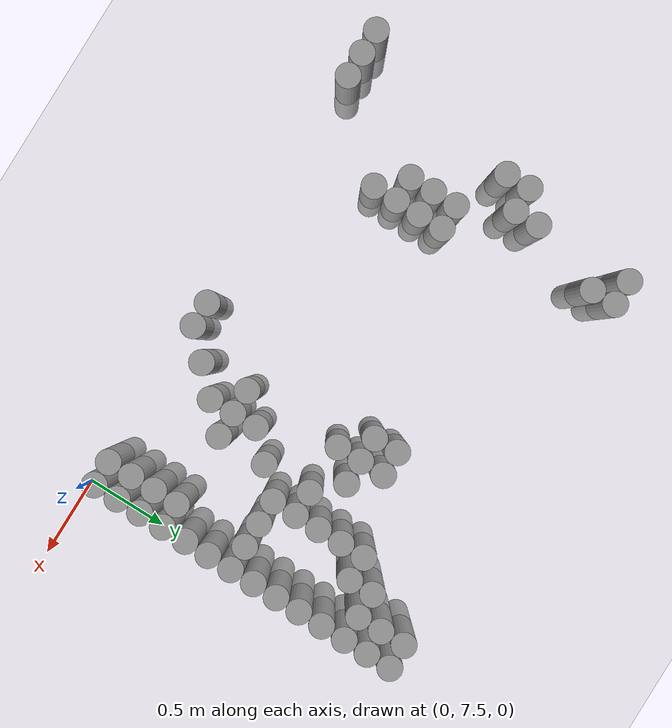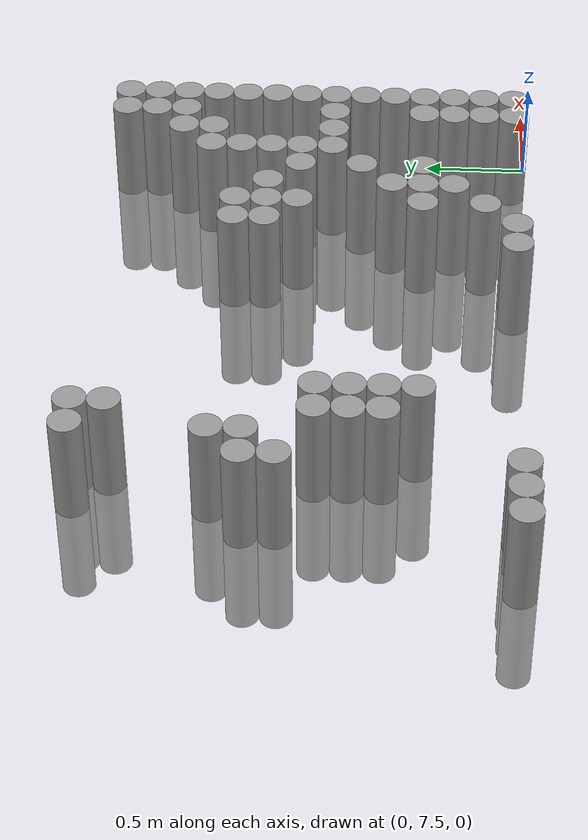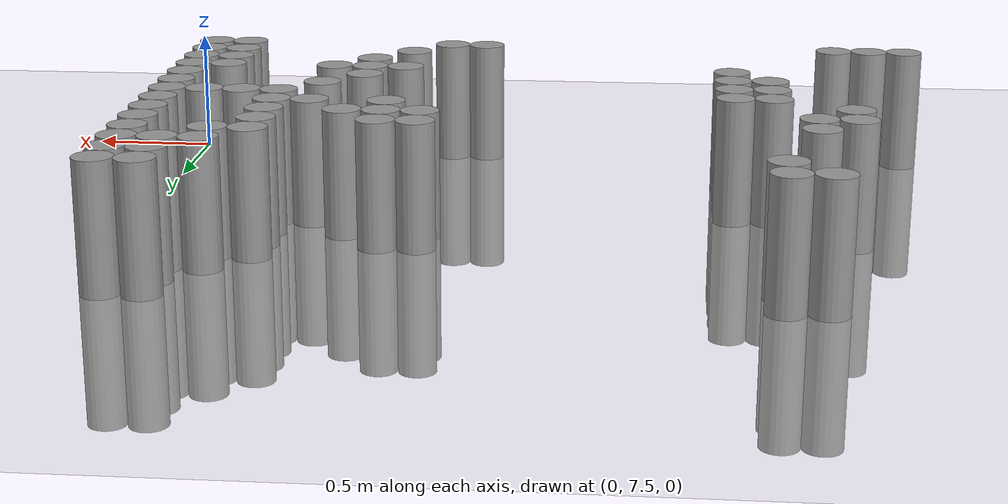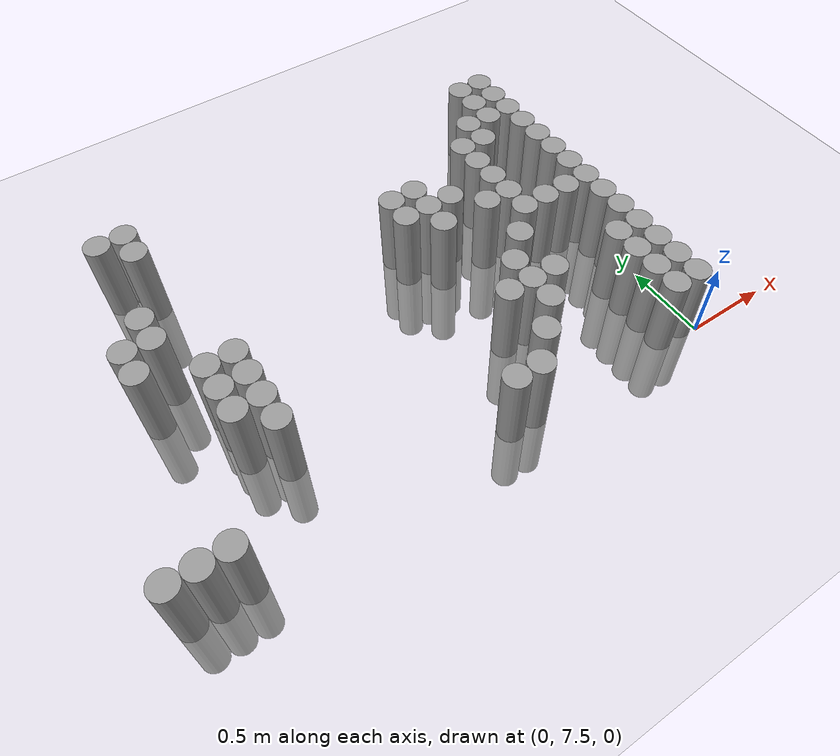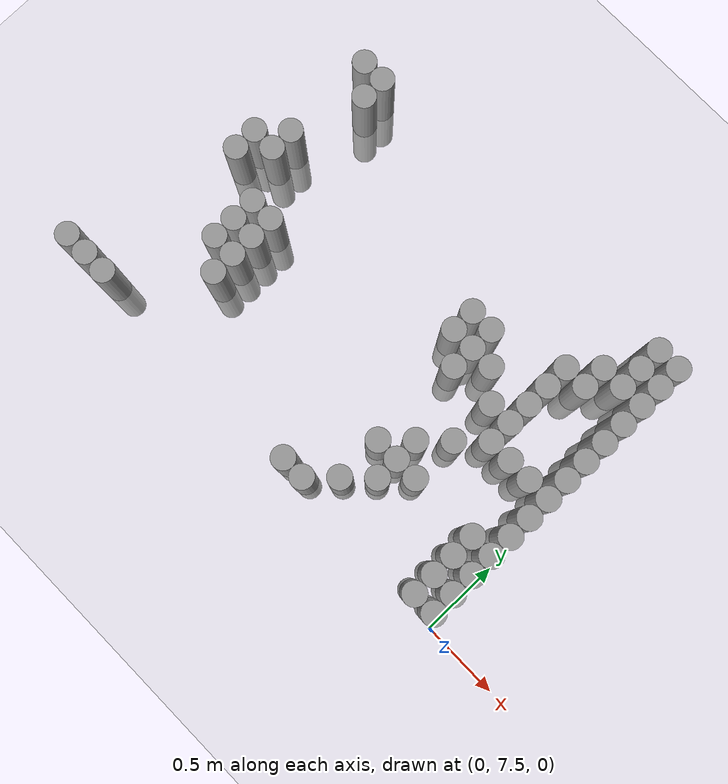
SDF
<sdf version="1.6">
 <world name="default">
  <model name="ground_plane">
   <static>1</static>
   <static>1</static>
   <link name="link">
    <collision name="collision">
     <geometry><plane><normal>0 0 1</normal><size>100 100</size></plane></geometry>
     <surface><friction><ode><mu>100</mu><mu2>50</mu2></ode></friction></surface>
    </collision>
    <visual name="visual">
     <cast_shadows>0</cast_shadows>
     <geometry><plane><normal>0 0 1</normal><size>100 100</size></plane></geometry>
     <material>
      <script><uri>file://media/materials/scripts/gazebo.material</uri><name>Gazebo/Grey</name></script>
     </material>
    </visual>
   </link>
  </model>
  <model name="unit_cylinder_183">
   <static>1</static>
   <pose>-3.075000 7.575000 0.000000 0.000000 0.000000 0.000000</pose>
   <link name="link">
    <inertial>
     <mass>1</mass>
     <inertia><ixx>0.145833</ixx><ixy>0</ixy><ixz>0</ixz><iyy>0.145833</iyy><iyz>0</iyz><izz>0.125</izz></inertia>
    </inertial>
    <collision name="collision">
     <geometry><cylinder><radius>0.075000</radius><length>1</length></cylinder></geometry>
    </collision>
    <visual name="visual">
     <geometry><cylinder><radius>0.075000</radius><length>1</length></cylinder></geometry>
     <material>
      <script><name>Gazebo/Grey</name><uri>file://media/materials/scripts/gazebo.material</uri></script>
     </material>
    </visual>
   </link>
  </model>
  <model name="unit_cylinder_191">
   <static>1</static>
   <pose>-2.925000 7.575000 0.000000 0.000000 0.000000 0.000000</pose>
   <link name="link">
    <inertial>
     <mass>1</mass>
     <inertia><ixx>0.145833</ixx><ixy>0</ixy><ixz>0</ixz><iyy>0.145833</iyy><iyz>0</iyz><izz>0.125</izz></inertia>
    </inertial>
    <collision name="collision">
     <geometry><cylinder><radius>0.075000</radius><length>1</length></cylinder></geometry>
    </collision>
    <visual name="visual">
     <geometry><cylinder><radius>0.075000</radius><length>1</length></cylinder></geometry>
     <material>
      <script><name>Gazebo/Grey</name><uri>file://media/materials/scripts/gazebo.material</uri></script>
     </material>
    </visual>
   </link>
  </model>
  <model name="unit_cylinder_194">
   <static>1</static>
   <pose>-2.775000 7.575000 0.000000 0.000000 0.000000 0.000000</pose>
   <link name="link">
    <inertial>
     <mass>1</mass>
     <inertia><ixx>0.145833</ixx><ixy>0</ixy><ixz>0</ixz><iyy>0.145833</iyy><iyz>0</iyz><izz>0.125</izz></inertia>
    </inertial>
    <collision name="collision">
     <geometry><cylinder><radius>0.075000</radius><length>1</length></cylinder></geometry>
    </collision>
    <visual name="visual">
     <geometry><cylinder><radius>0.075000</radius><length>1</length></cylinder></geometry>
     <material>
      <script><name>Gazebo/Grey</name><uri>file://media/materials/scripts/gazebo.material</uri></script>
     </material>
    </visual>
   </link>
  </model>
  <model name="unit_cylinder_195">
   <static>1</static>
   <pose>-2.775000 8.625000 0.000000 0.000000 0.000000 0.000000</pose>
   <link name="link">
    <inertial>
     <mass>1</mass>
     <inertia><ixx>0.145833</ixx><ixy>0</ixy><ixz>0</ixz><iyy>0.145833</iyy><iyz>0</iyz><izz>0.125</izz></inertia>
    </inertial>
    <collision name="collision">
     <geometry><cylinder><radius>0.075000</radius><length>1</length></cylinder></geometry>
    </collision>
    <visual name="visual">
     <geometry><cylinder><radius>0.075000</radius><length>1</length></cylinder></geometry>
     <material>
      <script><name>Gazebo/Grey</name><uri>file://media/materials/scripts/gazebo.material</uri></script>
     </material>
    </visual>
   </link>
  </model>
  <model name="unit_cylinder_196">
   <static>1</static>
   <pose>-2.775000 8.775000 0.000000 0.000000 0.000000 0.000000</pose>
   <link name="link">
    <inertial>
     <mass>1</mass>
     <inertia><ixx>0.145833</ixx><ixy>0</ixy><ixz>0</ixz><iyy>0.145833</iyy><iyz>0</iyz><izz>0.125</izz></inertia>
    </inertial>
    <collision name="collision">
     <geometry><cylinder><radius>0.075000</radius><length>1</length></cylinder></geometry>
    </collision>
    <visual name="visual">
     <geometry><cylinder><radius>0.075000</radius><length>1</length></cylinder></geometry>
     <material>
      <script><name>Gazebo/Grey</name><uri>file://media/materials/scripts/gazebo.material</uri></script>
     </material>
    </visual>
   </link>
  </model>
  <model name="unit_cylinder_197">
   <static>1</static>
   <pose>-2.625000 8.775000 0.000000 0.000000 0.000000 0.000000</pose>
   <link name="link">
    <inertial>
     <mass>1</mass>
     <inertia><ixx>0.145833</ixx><ixy>0</ixy><ixz>0</ixz><iyy>0.145833</iyy><iyz>0</iyz><izz>0.125</izz></inertia>
    </inertial>
    <collision name="collision">
     <geometry><cylinder><radius>0.075000</radius><length>1</length></cylinder></geometry>
    </collision>
    <visual name="visual">
     <geometry><cylinder><radius>0.075000</radius><length>1</length></cylinder></geometry>
     <material>
      <script><name>Gazebo/Grey</name><uri>file://media/materials/scripts/gazebo.material</uri></script>
     </material>
    </visual>
   </link>
  </model>
  <model name="unit_cylinder_198">
   <static>1</static>
   <pose>-2.625000 8.925000 0.000000 0.000000 0.000000 0.000000</pose>
   <link name="link">
    <inertial>
     <mass>1</mass>
     <inertia><ixx>0.145833</ixx><ixy>0</ixy><ixz>0</ixz><iyy>0.145833</iyy><iyz>0</iyz><izz>0.125</izz></inertia>
    </inertial>
    <collision name="collision">
     <geometry><cylinder><radius>0.075000</radius><length>1</length></cylinder></geometry>
    </collision>
    <visual name="visual">
     <geometry><cylinder><radius>0.075000</radius><length>1</length></cylinder></geometry>
     <material>
      <script><name>Gazebo/Grey</name><uri>file://media/materials/scripts/gazebo.material</uri></script>
     </material>
    </visual>
   </link>
  </model>
  <model name="unit_cylinder_199">
   <static>1</static>
   <pose>-2.625000 9.525000 0.000000 0.000000 0.000000 0.000000</pose>
   <link name="link">
    <inertial>
     <mass>1</mass>
     <inertia><ixx>0.145833</ixx><ixy>0</ixy><ixz>0</ixz><iyy>0.145833</iyy><iyz>0</iyz><izz>0.125</izz></inertia>
    </inertial>
    <collision name="collision">
     <geometry><cylinder><radius>0.075000</radius><length>1</length></cylinder></geometry>
    </collision>
    <visual name="visual">
     <geometry><cylinder><radius>0.075000</radius><length>1</length></cylinder></geometry>
     <material>
      <script><name>Gazebo/Grey</name><uri>file://media/materials/scripts/gazebo.material</uri></script>
     </material>
    </visual>
   </link>
  </model>
  <model name="unit_cylinder_203">
   <static>1</static>
   <pose>-2.475000 8.175000 0.000000 0.000000 0.000000 0.000000</pose>
   <link name="link">
    <inertial>
     <mass>1</mass>
     <inertia><ixx>0.145833</ixx><ixy>0</ixy><ixz>0</ixz><iyy>0.145833</iyy><iyz>0</iyz><izz>0.125</izz></inertia>
    </inertial>
    <collision name="collision">
     <geometry><cylinder><radius>0.075000</radius><length>1</length></cylinder></geometry>
    </collision>
    <visual name="visual">
     <geometry><cylinder><radius>0.075000</radius><length>1</length></cylinder></geometry>
     <material>
      <script><name>Gazebo/Grey</name><uri>file://media/materials/scripts/gazebo.material</uri></script>
     </material>
    </visual>
   </link>
  </model>
  <model name="unit_cylinder_204">
   <static>1</static>
   <pose>-2.475000 8.325000 0.000000 0.000000 0.000000 0.000000</pose>
   <link name="link">
    <inertial>
     <mass>1</mass>
     <inertia><ixx>0.145833</ixx><ixy>0</ixy><ixz>0</ixz><iyy>0.145833</iyy><iyz>0</iyz><izz>0.125</izz></inertia>
    </inertial>
    <collision name="collision">
     <geometry><cylinder><radius>0.075000</radius><length>1</length></cylinder></geometry>
    </collision>
    <visual name="visual">
     <geometry><cylinder><radius>0.075000</radius><length>1</length></cylinder></geometry>
     <material>
      <script><name>Gazebo/Grey</name><uri>file://media/materials/scripts/gazebo.material</uri></script>
     </material>
    </visual>
   </link>
  </model>
  <model name="unit_cylinder_205">
   <static>1</static>
   <pose>-2.475000 8.475000 0.000000 0.000000 0.000000 0.000000</pose>
   <link name="link">
    <inertial>
     <mass>1</mass>
     <inertia><ixx>0.145833</ixx><ixy>0</ixy><ixz>0</ixz><iyy>0.145833</iyy><iyz>0</iyz><izz>0.125</izz></inertia>
    </inertial>
    <collision name="collision">
     <geometry><cylinder><radius>0.075000</radius><length>1</length></cylinder></geometry>
    </collision>
    <visual name="visual">
     <geometry><cylinder><radius>0.075000</radius><length>1</length></cylinder></geometry>
     <material>
      <script><name>Gazebo/Grey</name><uri>file://media/materials/scripts/gazebo.material</uri></script>
     </material>
    </visual>
   </link>
  </model>
  <model name="unit_cylinder_206">
   <static>1</static>
   <pose>-2.475000 9.375000 0.000000 0.000000 0.000000 0.000000</pose>
   <link name="link">
    <inertial>
     <mass>1</mass>
     <inertia><ixx>0.145833</ixx><ixy>0</ixy><ixz>0</ixz><iyy>0.145833</iyy><iyz>0</iyz><izz>0.125</izz></inertia>
    </inertial>
    <collision name="collision">
     <geometry><cylinder><radius>0.075000</radius><length>1</length></cylinder></geometry>
    </collision>
    <visual name="visual">
     <geometry><cylinder><radius>0.075000</radius><length>1</length></cylinder></geometry>
     <material>
      <script><name>Gazebo/Grey</name><uri>file://media/materials/scripts/gazebo.material</uri></script>
     </material>
    </visual>
   </link>
  </model>
  <model name="unit_cylinder_207">
   <static>1</static>
   <pose>-2.475000 9.525000 0.000000 0.000000 0.000000 0.000000</pose>
   <link name="link">
    <inertial>
     <mass>1</mass>
     <inertia><ixx>0.145833</ixx><ixy>0</ixy><ixz>0</ixz><iyy>0.145833</iyy><iyz>0</iyz><izz>0.125</izz></inertia>
    </inertial>
    <collision name="collision">
     <geometry><cylinder><radius>0.075000</radius><length>1</length></cylinder></geometry>
    </collision>
    <visual name="visual">
     <geometry><cylinder><radius>0.075000</radius><length>1</length></cylinder></geometry>
     <material>
      <script><name>Gazebo/Grey</name><uri>file://media/materials/scripts/gazebo.material</uri></script>
     </material>
    </visual>
   </link>
  </model>
  <model name="unit_cylinder_211">
   <static>1</static>
   <pose>-2.325000 8.025000 0.000000 0.000000 0.000000 0.000000</pose>
   <link name="link">
    <inertial>
     <mass>1</mass>
     <inertia><ixx>0.145833</ixx><ixy>0</ixy><ixz>0</ixz><iyy>0.145833</iyy><iyz>0</iyz><izz>0.125</izz></inertia>
    </inertial>
    <collision name="collision">
     <geometry><cylinder><radius>0.075000</radius><length>1</length></cylinder></geometry>
    </collision>
    <visual name="visual">
     <geometry><cylinder><radius>0.075000</radius><length>1</length></cylinder></geometry>
     <material>
      <script><name>Gazebo/Grey</name><uri>file://media/materials/scripts/gazebo.material</uri></script>
     </material>
    </visual>
   </link>
  </model>
  <model name="unit_cylinder_212">
   <static>1</static>
   <pose>-2.325000 8.175000 0.000000 0.000000 0.000000 0.000000</pose>
   <link name="link">
    <inertial>
     <mass>1</mass>
     <inertia><ixx>0.145833</ixx><ixy>0</ixy><ixz>0</ixz><iyy>0.145833</iyy><iyz>0</iyz><izz>0.125</izz></inertia>
    </inertial>
    <collision name="collision">
     <geometry><cylinder><radius>0.075000</radius><length>1</length></cylinder></geometry>
    </collision>
    <visual name="visual">
     <geometry><cylinder><radius>0.075000</radius><length>1</length></cylinder></geometry>
     <material>
      <script><name>Gazebo/Grey</name><uri>file://media/materials/scripts/gazebo.material</uri></script>
     </material>
    </visual>
   </link>
  </model>
  <model name="unit_cylinder_213">
   <static>1</static>
   <pose>-2.325000 8.325000 0.000000 0.000000 0.000000 0.000000</pose>
   <link name="link">
    <inertial>
     <mass>1</mass>
     <inertia><ixx>0.145833</ixx><ixy>0</ixy><ixz>0</ixz><iyy>0.145833</iyy><iyz>0</iyz><izz>0.125</izz></inertia>
    </inertial>
    <collision name="collision">
     <geometry><cylinder><radius>0.075000</radius><length>1</length></cylinder></geometry>
    </collision>
    <visual name="visual">
     <geometry><cylinder><radius>0.075000</radius><length>1</length></cylinder></geometry>
     <material>
      <script><name>Gazebo/Grey</name><uri>file://media/materials/scripts/gazebo.material</uri></script>
     </material>
    </visual>
   </link>
  </model>
  <model name="unit_cylinder_214">
   <static>1</static>
   <pose>-2.325000 8.475000 0.000000 0.000000 0.000000 0.000000</pose>
   <link name="link">
    <inertial>
     <mass>1</mass>
     <inertia><ixx>0.145833</ixx><ixy>0</ixy><ixz>0</ixz><iyy>0.145833</iyy><iyz>0</iyz><izz>0.125</izz></inertia>
    </inertial>
    <collision name="collision">
     <geometry><cylinder><radius>0.075000</radius><length>1</length></cylinder></geometry>
    </collision>
    <visual name="visual">
     <geometry><cylinder><radius>0.075000</radius><length>1</length></cylinder></geometry>
     <material>
      <script><name>Gazebo/Grey</name><uri>file://media/materials/scripts/gazebo.material</uri></script>
     </material>
    </visual>
   </link>
  </model>
  <model name="unit_cylinder_223">
   <static>1</static>
   <pose>-1.275000 7.575000 0.000000 0.000000 0.000000 0.000000</pose>
   <link name="link">
    <inertial>
     <mass>1</mass>
     <inertia><ixx>0.145833</ixx><ixy>0</ixy><ixz>0</ixz><iyy>0.145833</iyy><iyz>0</iyz><izz>0.125</izz></inertia>
    </inertial>
    <collision name="collision">
     <geometry><cylinder><radius>0.075000</radius><length>1</length></cylinder></geometry>
    </collision>
    <visual name="visual">
     <geometry><cylinder><radius>0.075000</radius><length>1</length></cylinder></geometry>
     <material>
      <script><name>Gazebo/Grey</name><uri>file://media/materials/scripts/gazebo.material</uri></script>
     </material>
    </visual>
   </link>
  </model>
  <model name="unit_cylinder_229">
   <static>1</static>
   <pose>-1.125000 7.575000 0.000000 0.000000 0.000000 0.000000</pose>
   <link name="link">
    <inertial>
     <mass>1</mass>
     <inertia><ixx>0.145833</ixx><ixy>0</ixy><ixz>0</ixz><iyy>0.145833</iyy><iyz>0</iyz><izz>0.125</izz></inertia>
    </inertial>
    <collision name="collision">
     <geometry><cylinder><radius>0.075000</radius><length>1</length></cylinder></geometry>
    </collision>
    <visual name="visual">
     <geometry><cylinder><radius>0.075000</radius><length>1</length></cylinder></geometry>
     <material>
      <script><name>Gazebo/Grey</name><uri>file://media/materials/scripts/gazebo.material</uri></script>
     </material>
    </visual>
   </link>
  </model>
  <model name="unit_cylinder_230">
   <static>1</static>
   <pose>-1.125000 8.775000 0.000000 0.000000 0.000000 0.000000</pose>
   <link name="link">
    <inertial>
     <mass>1</mass>
     <inertia><ixx>0.145833</ixx><ixy>0</ixy><ixz>0</ixz><iyy>0.145833</iyy><iyz>0</iyz><izz>0.125</izz></inertia>
    </inertial>
    <collision name="collision">
     <geometry><cylinder><radius>0.075000</radius><length>1</length></cylinder></geometry>
    </collision>
    <visual name="visual">
     <geometry><cylinder><radius>0.075000</radius><length>1</length></cylinder></geometry>
     <material>
      <script><name>Gazebo/Grey</name><uri>file://media/materials/scripts/gazebo.material</uri></script>
     </material>
    </visual>
   </link>
  </model>
  <model name="unit_cylinder_231">
   <static>1</static>
   <pose>-1.125000 8.925000 0.000000 0.000000 0.000000 0.000000</pose>
   <link name="link">
    <inertial>
     <mass>1</mass>
     <inertia><ixx>0.145833</ixx><ixy>0</ixy><ixz>0</ixz><iyy>0.145833</iyy><iyz>0</iyz><izz>0.125</izz></inertia>
    </inertial>
    <collision name="collision">
     <geometry><cylinder><radius>0.075000</radius><length>1</length></cylinder></geometry>
    </collision>
    <visual name="visual">
     <geometry><cylinder><radius>0.075000</radius><length>1</length></cylinder></geometry>
     <material>
      <script><name>Gazebo/Grey</name><uri>file://media/materials/scripts/gazebo.material</uri></script>
     </material>
    </visual>
   </link>
  </model>
  <model name="unit_cylinder_237">
   <static>1</static>
   <pose>-0.975000 7.725000 0.000000 0.000000 0.000000 0.000000</pose>
   <link name="link">
    <inertial>
     <mass>1</mass>
     <inertia><ixx>0.145833</ixx><ixy>0</ixy><ixz>0</ixz><iyy>0.145833</iyy><iyz>0</iyz><izz>0.125</izz></inertia>
    </inertial>
    <collision name="collision">
     <geometry><cylinder><radius>0.075000</radius><length>1</length></cylinder></geometry>
    </collision>
    <visual name="visual">
     <geometry><cylinder><radius>0.075000</radius><length>1</length></cylinder></geometry>
     <material>
      <script><name>Gazebo/Grey</name><uri>file://media/materials/scripts/gazebo.material</uri></script>
     </material>
    </visual>
   </link>
  </model>
  <model name="unit_cylinder_238">
   <static>1</static>
   <pose>-0.975000 8.025000 0.000000 0.000000 0.000000 0.000000</pose>
   <link name="link">
    <inertial>
     <mass>1</mass>
     <inertia><ixx>0.145833</ixx><ixy>0</ixy><ixz>0</ixz><iyy>0.145833</iyy><iyz>0</iyz><izz>0.125</izz></inertia>
    </inertial>
    <collision name="collision">
     <geometry><cylinder><radius>0.075000</radius><length>1</length></cylinder></geometry>
    </collision>
    <visual name="visual">
     <geometry><cylinder><radius>0.075000</radius><length>1</length></cylinder></geometry>
     <material>
      <script><name>Gazebo/Grey</name><uri>file://media/materials/scripts/gazebo.material</uri></script>
     </material>
    </visual>
   </link>
  </model>
  <model name="unit_cylinder_239">
   <static>1</static>
   <pose>-0.975000 8.625000 0.000000 0.000000 0.000000 0.000000</pose>
   <link name="link">
    <inertial>
     <mass>1</mass>
     <inertia><ixx>0.145833</ixx><ixy>0</ixy><ixz>0</ixz><iyy>0.145833</iyy><iyz>0</iyz><izz>0.125</izz></inertia>
    </inertial>
    <collision name="collision">
     <geometry><cylinder><radius>0.075000</radius><length>1</length></cylinder></geometry>
    </collision>
    <visual name="visual">
     <geometry><cylinder><radius>0.075000</radius><length>1</length></cylinder></geometry>
     <material>
      <script><name>Gazebo/Grey</name><uri>file://media/materials/scripts/gazebo.material</uri></script>
     </material>
    </visual>
   </link>
  </model>
  <model name="unit_cylinder_240">
   <static>1</static>
   <pose>-0.975000 8.775000 0.000000 0.000000 0.000000 0.000000</pose>
   <link name="link">
    <inertial>
     <mass>1</mass>
     <inertia><ixx>0.145833</ixx><ixy>0</ixy><ixz>0</ixz><iyy>0.145833</iyy><iyz>0</iyz><izz>0.125</izz></inertia>
    </inertial>
    <collision name="collision">
     <geometry><cylinder><radius>0.075000</radius><length>1</length></cylinder></geometry>
    </collision>
    <visual name="visual">
     <geometry><cylinder><radius>0.075000</radius><length>1</length></cylinder></geometry>
     <material>
      <script><name>Gazebo/Grey</name><uri>file://media/materials/scripts/gazebo.material</uri></script>
     </material>
    </visual>
   </link>
  </model>
  <model name="unit_cylinder_241">
   <static>1</static>
   <pose>-0.975000 8.925000 0.000000 0.000000 0.000000 0.000000</pose>
   <link name="link">
    <inertial>
     <mass>1</mass>
     <inertia><ixx>0.145833</ixx><ixy>0</ixy><ixz>0</ixz><iyy>0.145833</iyy><iyz>0</iyz><izz>0.125</izz></inertia>
    </inertial>
    <collision name="collision">
     <geometry><cylinder><radius>0.075000</radius><length>1</length></cylinder></geometry>
    </collision>
    <visual name="visual">
     <geometry><cylinder><radius>0.075000</radius><length>1</length></cylinder></geometry>
     <material>
      <script><name>Gazebo/Grey</name><uri>file://media/materials/scripts/gazebo.material</uri></script>
     </material>
    </visual>
   </link>
  </model>
  <model name="unit_cylinder_242">
   <static>1</static>
   <pose>-0.825000 7.875000 0.000000 0.000000 0.000000 0.000000</pose>
   <link name="link">
    <inertial>
     <mass>1</mass>
     <inertia><ixx>0.145833</ixx><ixy>0</ixy><ixz>0</ixz><iyy>0.145833</iyy><iyz>0</iyz><izz>0.125</izz></inertia>
    </inertial>
    <collision name="collision">
     <geometry><cylinder><radius>0.075000</radius><length>1</length></cylinder></geometry>
    </collision>
    <visual name="visual">
     <geometry><cylinder><radius>0.075000</radius><length>1</length></cylinder></geometry>
     <material>
      <script><name>Gazebo/Grey</name><uri>file://media/materials/scripts/gazebo.material</uri></script>
     </material>
    </visual>
   </link>
  </model>
  <model name="unit_cylinder_243">
   <static>1</static>
   <pose>-0.825000 8.025000 0.000000 0.000000 0.000000 0.000000</pose>
   <link name="link">
    <inertial>
     <mass>1</mass>
     <inertia><ixx>0.145833</ixx><ixy>0</ixy><ixz>0</ixz><iyy>0.145833</iyy><iyz>0</iyz><izz>0.125</izz></inertia>
    </inertial>
    <collision name="collision">
     <geometry><cylinder><radius>0.075000</radius><length>1</length></cylinder></geometry>
    </collision>
    <visual name="visual">
     <geometry><cylinder><radius>0.075000</radius><length>1</length></cylinder></geometry>
     <material>
      <script><name>Gazebo/Grey</name><uri>file://media/materials/scripts/gazebo.material</uri></script>
     </material>
    </visual>
   </link>
  </model>
  <model name="unit_cylinder_244">
   <static>1</static>
   <pose>-0.825000 8.175000 0.000000 0.000000 0.000000 0.000000</pose>
   <link name="link">
    <inertial>
     <mass>1</mass>
     <inertia><ixx>0.145833</ixx><ixy>0</ixy><ixz>0</ixz><iyy>0.145833</iyy><iyz>0</iyz><izz>0.125</izz></inertia>
    </inertial>
    <collision name="collision">
     <geometry><cylinder><radius>0.075000</radius><length>1</length></cylinder></geometry>
    </collision>
    <visual name="visual">
     <geometry><cylinder><radius>0.075000</radius><length>1</length></cylinder></geometry>
     <material>
      <script><name>Gazebo/Grey</name><uri>file://media/materials/scripts/gazebo.material</uri></script>
     </material>
    </visual>
   </link>
  </model>
  <model name="unit_cylinder_245">
   <static>1</static>
   <pose>-0.825000 8.775000 0.000000 0.000000 0.000000 0.000000</pose>
   <link name="link">
    <inertial>
     <mass>1</mass>
     <inertia><ixx>0.145833</ixx><ixy>0</ixy><ixz>0</ixz><iyy>0.145833</iyy><iyz>0</iyz><izz>0.125</izz></inertia>
    </inertial>
    <collision name="collision">
     <geometry><cylinder><radius>0.075000</radius><length>1</length></cylinder></geometry>
    </collision>
    <visual name="visual">
     <geometry><cylinder><radius>0.075000</radius><length>1</length></cylinder></geometry>
     <material>
      <script><name>Gazebo/Grey</name><uri>file://media/materials/scripts/gazebo.material</uri></script>
     </material>
    </visual>
   </link>
  </model>
  <model name="unit_cylinder_246">
   <static>1</static>
   <pose>-0.675000 8.025000 0.000000 0.000000 0.000000 0.000000</pose>
   <link name="link">
    <inertial>
     <mass>1</mass>
     <inertia><ixx>0.145833</ixx><ixy>0</ixy><ixz>0</ixz><iyy>0.145833</iyy><iyz>0</iyz><izz>0.125</izz></inertia>
    </inertial>
    <collision name="collision">
     <geometry><cylinder><radius>0.075000</radius><length>1</length></cylinder></geometry>
    </collision>
    <visual name="visual">
     <geometry><cylinder><radius>0.075000</radius><length>1</length></cylinder></geometry>
     <material>
      <script><name>Gazebo/Grey</name><uri>file://media/materials/scripts/gazebo.material</uri></script>
     </material>
    </visual>
   </link>
  </model>
  <model name="unit_cylinder_247">
   <static>1</static>
   <pose>-0.675000 8.325000 0.000000 0.000000 0.000000 0.000000</pose>
   <link name="link">
    <inertial>
     <mass>1</mass>
     <inertia><ixx>0.145833</ixx><ixy>0</ixy><ixz>0</ixz><iyy>0.145833</iyy><iyz>0</iyz><izz>0.125</izz></inertia>
    </inertial>
    <collision name="collision">
     <geometry><cylinder><radius>0.075000</radius><length>1</length></cylinder></geometry>
    </collision>
    <visual name="visual">
     <geometry><cylinder><radius>0.075000</radius><length>1</length></cylinder></geometry>
     <material>
      <script><name>Gazebo/Grey</name><uri>file://media/materials/scripts/gazebo.material</uri></script>
     </material>
    </visual>
   </link>
  </model>
  <model name="unit_cylinder_248">
   <static>1</static>
   <pose>-0.675000 8.625000 0.000000 0.000000 0.000000 0.000000</pose>
   <link name="link">
    <inertial>
     <mass>1</mass>
     <inertia><ixx>0.145833</ixx><ixy>0</ixy><ixz>0</ixz><iyy>0.145833</iyy><iyz>0</iyz><izz>0.125</izz></inertia>
    </inertial>
    <collision name="collision">
     <geometry><cylinder><radius>0.075000</radius><length>1</length></cylinder></geometry>
    </collision>
    <visual name="visual">
     <geometry><cylinder><radius>0.075000</radius><length>1</length></cylinder></geometry>
     <material>
      <script><name>Gazebo/Grey</name><uri>file://media/materials/scripts/gazebo.material</uri></script>
     </material>
    </visual>
   </link>
  </model>
  <model name="unit_cylinder_250">
   <static>1</static>
   <pose>-0.525000 8.475000 0.000000 0.000000 0.000000 0.000000</pose>
   <link name="link">
    <inertial>
     <mass>1</mass>
     <inertia><ixx>0.145833</ixx><ixy>0</ixy><ixz>0</ixz><iyy>0.145833</iyy><iyz>0</iyz><izz>0.125</izz></inertia>
    </inertial>
    <collision name="collision">
     <geometry><cylinder><radius>0.075000</radius><length>1</length></cylinder></geometry>
    </collision>
    <visual name="visual">
     <geometry><cylinder><radius>0.075000</radius><length>1</length></cylinder></geometry>
     <material>
      <script><name>Gazebo/Grey</name><uri>file://media/materials/scripts/gazebo.material</uri></script>
     </material>
    </visual>
   </link>
  </model>
  <model name="unit_cylinder_251">
   <static>1</static>
   <pose>-0.525000 8.625000 0.000000 0.000000 0.000000 0.000000</pose>
   <link name="link">
    <inertial>
     <mass>1</mass>
     <inertia><ixx>0.145833</ixx><ixy>0</ixy><ixz>0</ixz><iyy>0.145833</iyy><iyz>0</iyz><izz>0.125</izz></inertia>
    </inertial>
    <collision name="collision">
     <geometry><cylinder><radius>0.075000</radius><length>1</length></cylinder></geometry>
    </collision>
    <visual name="visual">
     <geometry><cylinder><radius>0.075000</radius><length>1</length></cylinder></geometry>
     <material>
      <script><name>Gazebo/Grey</name><uri>file://media/materials/scripts/gazebo.material</uri></script>
     </material>
    </visual>
   </link>
  </model>
  <model name="unit_cylinder_252">
   <static>1</static>
   <pose>-0.525000 8.775000 0.000000 0.000000 0.000000 0.000000</pose>
   <link name="link">
    <inertial>
     <mass>1</mass>
     <inertia><ixx>0.145833</ixx><ixy>0</ixy><ixz>0</ixz><iyy>0.145833</iyy><iyz>0</iyz><izz>0.125</izz></inertia>
    </inertial>
    <collision name="collision">
     <geometry><cylinder><radius>0.075000</radius><length>1</length></cylinder></geometry>
    </collision>
    <visual name="visual">
     <geometry><cylinder><radius>0.075000</radius><length>1</length></cylinder></geometry>
     <material>
      <script><name>Gazebo/Grey</name><uri>file://media/materials/scripts/gazebo.material</uri></script>
     </material>
    </visual>
   </link>
  </model>
  <model name="unit_cylinder_253">
   <static>1</static>
   <pose>-0.525000 8.925000 0.000000 0.000000 0.000000 0.000000</pose>
   <link name="link">
    <inertial>
     <mass>1</mass>
     <inertia><ixx>0.145833</ixx><ixy>0</ixy><ixz>0</ixz><iyy>0.145833</iyy><iyz>0</iyz><izz>0.125</izz></inertia>
    </inertial>
    <collision name="collision">
     <geometry><cylinder><radius>0.075000</radius><length>1</length></cylinder></geometry>
    </collision>
    <visual name="visual">
     <geometry><cylinder><radius>0.075000</radius><length>1</length></cylinder></geometry>
     <material>
      <script><name>Gazebo/Grey</name><uri>file://media/materials/scripts/gazebo.material</uri></script>
     </material>
    </visual>
   </link>
  </model>
  <model name="unit_cylinder_254">
   <static>1</static>
   <pose>-0.525000 9.075000 0.000000 0.000000 0.000000 0.000000</pose>
   <link name="link">
    <inertial>
     <mass>1</mass>
     <inertia><ixx>0.145833</ixx><ixy>0</ixy><ixz>0</ixz><iyy>0.145833</iyy><iyz>0</iyz><izz>0.125</izz></inertia>
    </inertial>
    <collision name="collision">
     <geometry><cylinder><radius>0.075000</radius><length>1</length></cylinder></geometry>
    </collision>
    <visual name="visual">
     <geometry><cylinder><radius>0.075000</radius><length>1</length></cylinder></geometry>
     <material>
      <script><name>Gazebo/Grey</name><uri>file://media/materials/scripts/gazebo.material</uri></script>
     </material>
    </visual>
   </link>
  </model>
  <model name="unit_cylinder_260">
   <static>1</static>
   <pose>-0.375000 8.475000 0.000000 0.000000 0.000000 0.000000</pose>
   <link name="link">
    <inertial>
     <mass>1</mass>
     <inertia><ixx>0.145833</ixx><ixy>0</ixy><ixz>0</ixz><iyy>0.145833</iyy><iyz>0</iyz><izz>0.125</izz></inertia>
    </inertial>
    <collision name="collision">
     <geometry><cylinder><radius>0.075000</radius><length>1</length></cylinder></geometry>
    </collision>
    <visual name="visual">
     <geometry><cylinder><radius>0.075000</radius><length>1</length></cylinder></geometry>
     <material>
      <script><name>Gazebo/Grey</name><uri>file://media/materials/scripts/gazebo.material</uri></script>
     </material>
    </visual>
   </link>
  </model>
  <model name="unit_cylinder_261">
   <static>1</static>
   <pose>-0.375000 9.075000 0.000000 0.000000 0.000000 0.000000</pose>
   <link name="link">
    <inertial>
     <mass>1</mass>
     <inertia><ixx>0.145833</ixx><ixy>0</ixy><ixz>0</ixz><iyy>0.145833</iyy><iyz>0</iyz><izz>0.125</izz></inertia>
    </inertial>
    <collision name="collision">
     <geometry><cylinder><radius>0.075000</radius><length>1</length></cylinder></geometry>
    </collision>
    <visual name="visual">
     <geometry><cylinder><radius>0.075000</radius><length>1</length></cylinder></geometry>
     <material>
      <script><name>Gazebo/Grey</name><uri>file://media/materials/scripts/gazebo.material</uri></script>
     </material>
    </visual>
   </link>
  </model>
  <model name="unit_cylinder_262">
   <static>1</static>
   <pose>-0.375000 9.225000 0.000000 0.000000 0.000000 0.000000</pose>
   <link name="link">
    <inertial>
     <mass>1</mass>
     <inertia><ixx>0.145833</ixx><ixy>0</ixy><ixz>0</ixz><iyy>0.145833</iyy><iyz>0</iyz><izz>0.125</izz></inertia>
    </inertial>
    <collision name="collision">
     <geometry><cylinder><radius>0.075000</radius><length>1</length></cylinder></geometry>
    </collision>
    <visual name="visual">
     <geometry><cylinder><radius>0.075000</radius><length>1</length></cylinder></geometry>
     <material>
      <script><name>Gazebo/Grey</name><uri>file://media/materials/scripts/gazebo.material</uri></script>
     </material>
    </visual>
   </link>
  </model>
  <model name="unit_cylinder_274">
   <static>1</static>
   <pose>-0.225000 7.575000 0.000000 0.000000 0.000000 0.000000</pose>
   <link name="link">
    <inertial>
     <mass>1</mass>
     <inertia><ixx>0.145833</ixx><ixy>0</ixy><ixz>0</ixz><iyy>0.145833</iyy><iyz>0</iyz><izz>0.125</izz></inertia>
    </inertial>
    <collision name="collision">
     <geometry><cylinder><radius>0.075000</radius><length>1</length></cylinder></geometry>
    </collision>
    <visual name="visual">
     <geometry><cylinder><radius>0.075000</radius><length>1</length></cylinder></geometry>
     <material>
      <script><name>Gazebo/Grey</name><uri>file://media/materials/scripts/gazebo.material</uri></script>
     </material>
    </visual>
   </link>
  </model>
  <model name="unit_cylinder_275">
   <static>1</static>
   <pose>-0.225000 7.725000 0.000000 0.000000 0.000000 0.000000</pose>
   <link name="link">
    <inertial>
     <mass>1</mass>
     <inertia><ixx>0.145833</ixx><ixy>0</ixy><ixz>0</ixz><iyy>0.145833</iyy><iyz>0</iyz><izz>0.125</izz></inertia>
    </inertial>
    <collision name="collision">
     <geometry><cylinder><radius>0.075000</radius><length>1</length></cylinder></geometry>
    </collision>
    <visual name="visual">
     <geometry><cylinder><radius>0.075000</radius><length>1</length></cylinder></geometry>
     <material>
      <script><name>Gazebo/Grey</name><uri>file://media/materials/scripts/gazebo.material</uri></script>
     </material>
    </visual>
   </link>
  </model>
  <model name="unit_cylinder_276">
   <static>1</static>
   <pose>-0.225000 7.875000 0.000000 0.000000 0.000000 0.000000</pose>
   <link name="link">
    <inertial>
     <mass>1</mass>
     <inertia><ixx>0.145833</ixx><ixy>0</ixy><ixz>0</ixz><iyy>0.145833</iyy><iyz>0</iyz><izz>0.125</izz></inertia>
    </inertial>
    <collision name="collision">
     <geometry><cylinder><radius>0.075000</radius><length>1</length></cylinder></geometry>
    </collision>
    <visual name="visual">
     <geometry><cylinder><radius>0.075000</radius><length>1</length></cylinder></geometry>
     <material>
      <script><name>Gazebo/Grey</name><uri>file://media/materials/scripts/gazebo.material</uri></script>
     </material>
    </visual>
   </link>
  </model>
  <model name="unit_cylinder_277">
   <static>1</static>
   <pose>-0.225000 8.025000 0.000000 0.000000 0.000000 0.000000</pose>
   <link name="link">
    <inertial>
     <mass>1</mass>
     <inertia><ixx>0.145833</ixx><ixy>0</ixy><ixz>0</ixz><iyy>0.145833</iyy><iyz>0</iyz><izz>0.125</izz></inertia>
    </inertial>
    <collision name="collision">
     <geometry><cylinder><radius>0.075000</radius><length>1</length></cylinder></geometry>
    </collision>
    <visual name="visual">
     <geometry><cylinder><radius>0.075000</radius><length>1</length></cylinder></geometry>
     <material>
      <script><name>Gazebo/Grey</name><uri>file://media/materials/scripts/gazebo.material</uri></script>
     </material>
    </visual>
   </link>
  </model>
  <model name="unit_cylinder_278">
   <static>1</static>
   <pose>-0.225000 8.475000 0.000000 0.000000 0.000000 0.000000</pose>
   <link name="link">
    <inertial>
     <mass>1</mass>
     <inertia><ixx>0.145833</ixx><ixy>0</ixy><ixz>0</ixz><iyy>0.145833</iyy><iyz>0</iyz><izz>0.125</izz></inertia>
    </inertial>
    <collision name="collision">
     <geometry><cylinder><radius>0.075000</radius><length>1</length></cylinder></geometry>
    </collision>
    <visual name="visual">
     <geometry><cylinder><radius>0.075000</radius><length>1</length></cylinder></geometry>
     <material>
      <script><name>Gazebo/Grey</name><uri>file://media/materials/scripts/gazebo.material</uri></script>
     </material>
    </visual>
   </link>
  </model>
  <model name="unit_cylinder_279">
   <static>1</static>
   <pose>-0.225000 9.225000 0.000000 0.000000 0.000000 0.000000</pose>
   <link name="link">
    <inertial>
     <mass>1</mass>
     <inertia><ixx>0.145833</ixx><ixy>0</ixy><ixz>0</ixz><iyy>0.145833</iyy><iyz>0</iyz><izz>0.125</izz></inertia>
    </inertial>
    <collision name="collision">
     <geometry><cylinder><radius>0.075000</radius><length>1</length></cylinder></geometry>
    </collision>
    <visual name="visual">
     <geometry><cylinder><radius>0.075000</radius><length>1</length></cylinder></geometry>
     <material>
      <script><name>Gazebo/Grey</name><uri>file://media/materials/scripts/gazebo.material</uri></script>
     </material>
    </visual>
   </link>
  </model>
  <model name="unit_cylinder_280">
   <static>1</static>
   <pose>-0.225000 9.375000 0.000000 0.000000 0.000000 0.000000</pose>
   <link name="link">
    <inertial>
     <mass>1</mass>
     <inertia><ixx>0.145833</ixx><ixy>0</ixy><ixz>0</ixz><iyy>0.145833</iyy><iyz>0</iyz><izz>0.125</izz></inertia>
    </inertial>
    <collision name="collision">
     <geometry><cylinder><radius>0.075000</radius><length>1</length></cylinder></geometry>
    </collision>
    <visual name="visual">
     <geometry><cylinder><radius>0.075000</radius><length>1</length></cylinder></geometry>
     <material>
      <script><name>Gazebo/Grey</name><uri>file://media/materials/scripts/gazebo.material</uri></script>
     </material>
    </visual>
   </link>
  </model>
  <model name="unit_cylinder_281">
   <static>1</static>
   <pose>-0.225000 9.525000 0.000000 0.000000 0.000000 0.000000</pose>
   <link name="link">
    <inertial>
     <mass>1</mass>
     <inertia><ixx>0.145833</ixx><ixy>0</ixy><ixz>0</ixz><iyy>0.145833</iyy><iyz>0</iyz><izz>0.125</izz></inertia>
    </inertial>
    <collision name="collision">
     <geometry><cylinder><radius>0.075000</radius><length>1</length></cylinder></geometry>
    </collision>
    <visual name="visual">
     <geometry><cylinder><radius>0.075000</radius><length>1</length></cylinder></geometry>
     <material>
      <script><name>Gazebo/Grey</name><uri>file://media/materials/scripts/gazebo.material</uri></script>
     </material>
    </visual>
   </link>
  </model>
  <model name="unit_cylinder_298">
   <static>1</static>
   <pose>-0.075000 7.575000 0.000000 0.000000 0.000000 0.000000</pose>
   <link name="link">
    <inertial>
     <mass>1</mass>
     <inertia><ixx>0.145833</ixx><ixy>0</ixy><ixz>0</ixz><iyy>0.145833</iyy><iyz>0</iyz><izz>0.125</izz></inertia>
    </inertial>
    <collision name="collision">
     <geometry><cylinder><radius>0.075000</radius><length>1</length></cylinder></geometry>
    </collision>
    <visual name="visual">
     <geometry><cylinder><radius>0.075000</radius><length>1</length></cylinder></geometry>
     <material>
      <script><name>Gazebo/Grey</name><uri>file://media/materials/scripts/gazebo.material</uri></script>
     </material>
    </visual>
   </link>
  </model>
  <model name="unit_cylinder_299">
   <static>1</static>
   <pose>-0.075000 7.725000 0.000000 0.000000 0.000000 0.000000</pose>
   <link name="link">
    <inertial>
     <mass>1</mass>
     <inertia><ixx>0.145833</ixx><ixy>0</ixy><ixz>0</ixz><iyy>0.145833</iyy><iyz>0</iyz><izz>0.125</izz></inertia>
    </inertial>
    <collision name="collision">
     <geometry><cylinder><radius>0.075000</radius><length>1</length></cylinder></geometry>
    </collision>
    <visual name="visual">
     <geometry><cylinder><radius>0.075000</radius><length>1</length></cylinder></geometry>
     <material>
      <script><name>Gazebo/Grey</name><uri>file://media/materials/scripts/gazebo.material</uri></script>
     </material>
    </visual>
   </link>
  </model>
  <model name="unit_cylinder_300">
   <static>1</static>
   <pose>-0.075000 7.875000 0.000000 0.000000 0.000000 0.000000</pose>
   <link name="link">
    <inertial>
     <mass>1</mass>
     <inertia><ixx>0.145833</ixx><ixy>0</ixy><ixz>0</ixz><iyy>0.145833</iyy><iyz>0</iyz><izz>0.125</izz></inertia>
    </inertial>
    <collision name="collision">
     <geometry><cylinder><radius>0.075000</radius><length>1</length></cylinder></geometry>
    </collision>
    <visual name="visual">
     <geometry><cylinder><radius>0.075000</radius><length>1</length></cylinder></geometry>
     <material>
      <script><name>Gazebo/Grey</name><uri>file://media/materials/scripts/gazebo.material</uri></script>
     </material>
    </visual>
   </link>
  </model>
  <model name="unit_cylinder_301">
   <static>1</static>
   <pose>-0.075000 8.025000 0.000000 0.000000 0.000000 0.000000</pose>
   <link name="link">
    <inertial>
     <mass>1</mass>
     <inertia><ixx>0.145833</ixx><ixy>0</ixy><ixz>0</ixz><iyy>0.145833</iyy><iyz>0</iyz><izz>0.125</izz></inertia>
    </inertial>
    <collision name="collision">
     <geometry><cylinder><radius>0.075000</radius><length>1</length></cylinder></geometry>
    </collision>
    <visual name="visual">
     <geometry><cylinder><radius>0.075000</radius><length>1</length></cylinder></geometry>
     <material>
      <script><name>Gazebo/Grey</name><uri>file://media/materials/scripts/gazebo.material</uri></script>
     </material>
    </visual>
   </link>
  </model>
  <model name="unit_cylinder_302">
   <static>1</static>
   <pose>-0.075000 8.175000 0.000000 0.000000 0.000000 0.000000</pose>
   <link name="link">
    <inertial>
     <mass>1</mass>
     <inertia><ixx>0.145833</ixx><ixy>0</ixy><ixz>0</ixz><iyy>0.145833</iyy><iyz>0</iyz><izz>0.125</izz></inertia>
    </inertial>
    <collision name="collision">
     <geometry><cylinder><radius>0.075000</radius><length>1</length></cylinder></geometry>
    </collision>
    <visual name="visual">
     <geometry><cylinder><radius>0.075000</radius><length>1</length></cylinder></geometry>
     <material>
      <script><name>Gazebo/Grey</name><uri>file://media/materials/scripts/gazebo.material</uri></script>
     </material>
    </visual>
   </link>
  </model>
  <model name="unit_cylinder_303">
   <static>1</static>
   <pose>-0.075000 8.325000 0.000000 0.000000 0.000000 0.000000</pose>
   <link name="link">
    <inertial>
     <mass>1</mass>
     <inertia><ixx>0.145833</ixx><ixy>0</ixy><ixz>0</ixz><iyy>0.145833</iyy><iyz>0</iyz><izz>0.125</izz></inertia>
    </inertial>
    <collision name="collision">
     <geometry><cylinder><radius>0.075000</radius><length>1</length></cylinder></geometry>
    </collision>
    <visual name="visual">
     <geometry><cylinder><radius>0.075000</radius><length>1</length></cylinder></geometry>
     <material>
      <script><name>Gazebo/Grey</name><uri>file://media/materials/scripts/gazebo.material</uri></script>
     </material>
    </visual>
   </link>
  </model>
  <model name="unit_cylinder_304">
   <static>1</static>
   <pose>-0.075000 8.475000 0.000000 0.000000 0.000000 0.000000</pose>
   <link name="link">
    <inertial>
     <mass>1</mass>
     <inertia><ixx>0.145833</ixx><ixy>0</ixy><ixz>0</ixz><iyy>0.145833</iyy><iyz>0</iyz><izz>0.125</izz></inertia>
    </inertial>
    <collision name="collision">
     <geometry><cylinder><radius>0.075000</radius><length>1</length></cylinder></geometry>
    </collision>
    <visual name="visual">
     <geometry><cylinder><radius>0.075000</radius><length>1</length></cylinder></geometry>
     <material>
      <script><name>Gazebo/Grey</name><uri>file://media/materials/scripts/gazebo.material</uri></script>
     </material>
    </visual>
   </link>
  </model>
  <model name="unit_cylinder_305">
   <static>1</static>
   <pose>-0.075000 8.625000 0.000000 0.000000 0.000000 0.000000</pose>
   <link name="link">
    <inertial>
     <mass>1</mass>
     <inertia><ixx>0.145833</ixx><ixy>0</ixy><ixz>0</ixz><iyy>0.145833</iyy><iyz>0</iyz><izz>0.125</izz></inertia>
    </inertial>
    <collision name="collision">
     <geometry><cylinder><radius>0.075000</radius><length>1</length></cylinder></geometry>
    </collision>
    <visual name="visual">
     <geometry><cylinder><radius>0.075000</radius><length>1</length></cylinder></geometry>
     <material>
      <script><name>Gazebo/Grey</name><uri>file://media/materials/scripts/gazebo.material</uri></script>
     </material>
    </visual>
   </link>
  </model>
  <model name="unit_cylinder_306">
   <static>1</static>
   <pose>-0.075000 8.775000 0.000000 0.000000 0.000000 0.000000</pose>
   <link name="link">
    <inertial>
     <mass>1</mass>
     <inertia><ixx>0.145833</ixx><ixy>0</ixy><ixz>0</ixz><iyy>0.145833</iyy><iyz>0</iyz><izz>0.125</izz></inertia>
    </inertial>
    <collision name="collision">
     <geometry><cylinder><radius>0.075000</radius><length>1</length></cylinder></geometry>
    </collision>
    <visual name="visual">
     <geometry><cylinder><radius>0.075000</radius><length>1</length></cylinder></geometry>
     <material>
      <script><name>Gazebo/Grey</name><uri>file://media/materials/scripts/gazebo.material</uri></script>
     </material>
    </visual>
   </link>
  </model>
  <model name="unit_cylinder_307">
   <static>1</static>
   <pose>-0.075000 8.925000 0.000000 0.000000 0.000000 0.000000</pose>
   <link name="link">
    <inertial>
     <mass>1</mass>
     <inertia><ixx>0.145833</ixx><ixy>0</ixy><ixz>0</ixz><iyy>0.145833</iyy><iyz>0</iyz><izz>0.125</izz></inertia>
    </inertial>
    <collision name="collision">
     <geometry><cylinder><radius>0.075000</radius><length>1</length></cylinder></geometry>
    </collision>
    <visual name="visual">
     <geometry><cylinder><radius>0.075000</radius><length>1</length></cylinder></geometry>
     <material>
      <script><name>Gazebo/Grey</name><uri>file://media/materials/scripts/gazebo.material</uri></script>
     </material>
    </visual>
   </link>
  </model>
  <model name="unit_cylinder_308">
   <static>1</static>
   <pose>-0.075000 9.075000 0.000000 0.000000 0.000000 0.000000</pose>
   <link name="link">
    <inertial>
     <mass>1</mass>
     <inertia><ixx>0.145833</ixx><ixy>0</ixy><ixz>0</ixz><iyy>0.145833</iyy><iyz>0</iyz><izz>0.125</izz></inertia>
    </inertial>
    <collision name="collision">
     <geometry><cylinder><radius>0.075000</radius><length>1</length></cylinder></geometry>
    </collision>
    <visual name="visual">
     <geometry><cylinder><radius>0.075000</radius><length>1</length></cylinder></geometry>
     <material>
      <script><name>Gazebo/Grey</name><uri>file://media/materials/scripts/gazebo.material</uri></script>
     </material>
    </visual>
   </link>
  </model>
  <model name="unit_cylinder_309">
   <static>1</static>
   <pose>-0.075000 9.225000 0.000000 0.000000 0.000000 0.000000</pose>
   <link name="link">
    <inertial>
     <mass>1</mass>
     <inertia><ixx>0.145833</ixx><ixy>0</ixy><ixz>0</ixz><iyy>0.145833</iyy><iyz>0</iyz><izz>0.125</izz></inertia>
    </inertial>
    <collision name="collision">
     <geometry><cylinder><radius>0.075000</radius><length>1</length></cylinder></geometry>
    </collision>
    <visual name="visual">
     <geometry><cylinder><radius>0.075000</radius><length>1</length></cylinder></geometry>
     <material>
      <script><name>Gazebo/Grey</name><uri>file://media/materials/scripts/gazebo.material</uri></script>
     </material>
    </visual>
   </link>
  </model>
  <model name="unit_cylinder_310">
   <static>1</static>
   <pose>-0.075000 9.375000 0.000000 0.000000 0.000000 0.000000</pose>
   <link name="link">
    <inertial>
     <mass>1</mass>
     <inertia><ixx>0.145833</ixx><ixy>0</ixy><ixz>0</ixz><iyy>0.145833</iyy><iyz>0</iyz><izz>0.125</izz></inertia>
    </inertial>
    <collision name="collision">
     <geometry><cylinder><radius>0.075000</radius><length>1</length></cylinder></geometry>
    </collision>
    <visual name="visual">
     <geometry><cylinder><radius>0.075000</radius><length>1</length></cylinder></geometry>
     <material>
      <script><name>Gazebo/Grey</name><uri>file://media/materials/scripts/gazebo.material</uri></script>
     </material>
    </visual>
   </link>
  </model>
  <model name="unit_cylinder_311">
   <static>1</static>
   <pose>-0.075000 9.525000 0.000000 0.000000 0.000000 0.000000</pose>
   <link name="link">
    <inertial>
     <mass>1</mass>
     <inertia><ixx>0.145833</ixx><ixy>0</ixy><ixz>0</ixz><iyy>0.145833</iyy><iyz>0</iyz><izz>0.125</izz></inertia>
    </inertial>
    <collision name="collision">
     <geometry><cylinder><radius>0.075000</radius><length>1</length></cylinder></geometry>
    </collision>
    <visual name="visual">
     <geometry><cylinder><radius>0.075000</radius><length>1</length></cylinder></geometry>
     <material>
      <script><name>Gazebo/Grey</name><uri>file://media/materials/scripts/gazebo.material</uri></script>
     </material>
    </visual>
   </link>
  </model>
 </world>
</sdf>
